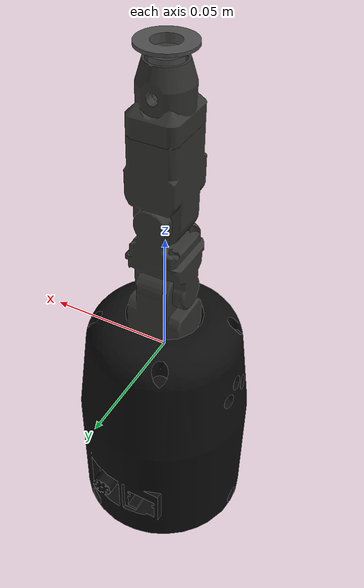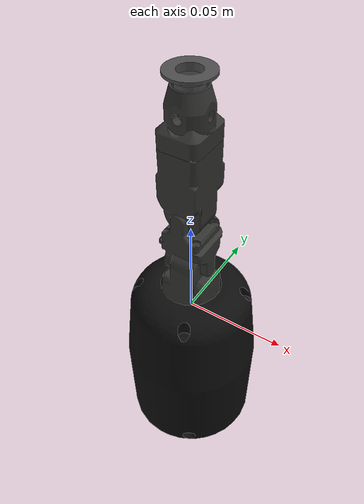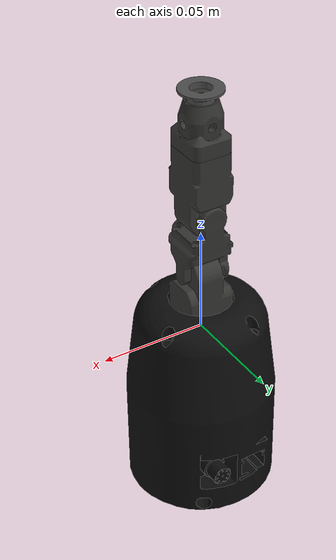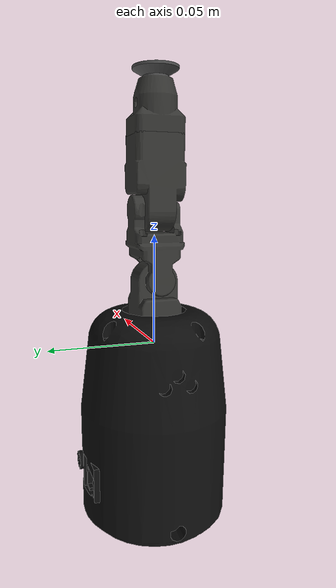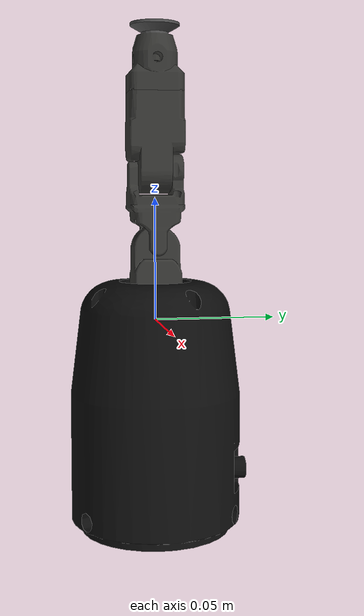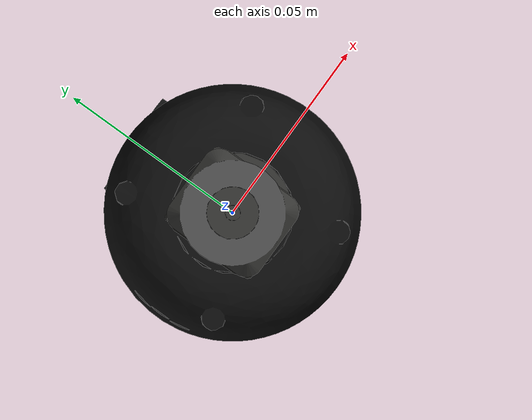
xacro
<?xml version="1.0"?>
<robot name="dg1f" xmlns:xacro="http://www.ros.org/wiki/xacro">

    <xacro:include filename="$(find dg1f_description)/urdf/dg1f.urdf" />

    <link name="base_link" />

    <joint name="base_joint" type="fixed">
        <parent link="base_link"/>
        <child link="l_base"/>
        <origin xyz="0 0 0" rpy="0 0 0"/>
    </joint>

    <ros2_control name="dg1f_mock" type="system">
        <hardware>
            <plugin>mock_components/GenericSystem</plugin>
            <param name="mock_sensor_commands">false</param>
            <param name="position_state_following_offset">0.0</param>
        </hardware>

        <joint name="j_1_1">
            <command_interface name="position" />
            <state_interface name="position"><param name="initial_value">0.0</param></state_interface>
            <state_interface name="velocity" />
        </joint>
        <joint name="j_1_2">
            <command_interface name="position" />
            <state_interface name="position"><param name="initial_value">0.0</param></state_interface>
            <state_interface name="velocity" />
        </joint>
        <joint name="j_1_3">
            <command_interface name="position" />
            <state_interface name="position"><param name="initial_value">0.0</param></state_interface>
            <state_interface name="velocity" />
        </joint>
    </ros2_control>
</robot>

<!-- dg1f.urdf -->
<robot name="dg1f">
  <!--links and joints-->
  <!--base-->
  <link name="l_base">
    <visual>
      <origin xyz="0 0 0" rpy="0 0 0" />
      <geometry>
        <mesh filename="package://dg1f_description/meshes/dg1f/visual/l_base.dae" />
      </geometry>
    </visual>
    <collision>
      <origin xyz="0 0 0" rpy="0 0 0" />
      <geometry>
        <mesh filename="package://dg1f_description/meshes/dg1f/collision/l_base.stl" />
      </geometry>
    </collision>
  </link>

  <!-- +++++++++++++++++++++++++++finger-1-->
  <link name="l_1_1">
    <visual>
      <origin xyz="0 0 0" rpy="0 0 0" />
      <geometry>
        <mesh filename="package://dg1f_description/meshes/dg1f/visual/l_1.dae" />
      </geometry>
    </visual>
    <collision>
      <origin xyz="0 0 0" rpy="0 0 0" />
      <geometry>
        <mesh filename="package://dg1f_description/meshes/dg1f/collision/l_1.stl" />
      </geometry>
    </collision>
  </link>
  <!--joint outer-->
  <joint name="j_1_1" type="revolute">
    <origin xyz="0 0 0" rpy="0.0 0.0 0.0" />
    <parent link="l_base" />
    <child link="l_1_1" />
    <axis xyz="0 0 1" />
    <limit lower="-3.141593" upper="3.141593" effort="7.644" velocity="3.141592653589793" />
  </joint>

  <link name="l_1_2">
    <visual>
      <origin xyz="0 0 0" rpy="0 0 0" />
      <geometry>
        <mesh filename="package://dg1f_description/meshes/dg1f/visual/l_2.dae" />
      </geometry>
    </visual>
    <collision>
      <origin xyz="0 0 0" rpy="0 0 0" />
      <geometry>
        <mesh filename="package://dg1f_description/meshes/dg1f/collision/l_2.stl" />
      </geometry>
    </collision>
  </link>
  <!--joint inner-->
  <joint name="j_1_2" type="revolute">
    <origin xyz="0 0 0.030317" rpy="0.0 0.0 0.0" />
    <parent link="l_1_1" />
    <child link="l_1_2" />
    <axis xyz="1 0 0" />
    <limit lower="-1.5708" upper="1.5708" effort="7.644" velocity="3.141592653589793" />
  </joint>

  <link name="l_1_3">
    <visual>
      <origin xyz="0 0 0" rpy="0 0 0" />
      <geometry>
        <mesh filename="package://dg1f_description/meshes/dg1f/visual/l_3.dae" />
      </geometry>
    </visual>
    <collision>
      <origin xyz="0 0 0" rpy="0 0 0" />
      <geometry>
        <mesh filename="package://dg1f_description/meshes/dg1f/collision/l_3.stl" />
      </geometry>
    </collision>
  </link>
  <!--joint 1-->
  <joint name="j_1_3" type="revolute">
    <origin xyz="0 0 0.031" rpy="0.0 0.0 0.0" />
    <parent link="l_1_2" />
    <child link="l_1_3" />
    <axis xyz="0 1 0" />
    <limit lower="-1.5708" upper="1.5708" effort="7.644" velocity="3.141592653589793" />
  </joint>

  <link name="l_1_4">
    <visual>
      <origin xyz="0 0 0" rpy="0 0 0" />
      <geometry>
        <mesh filename="package://dg1f_description/meshes/dg1f/visual/l_tip.dae" />
      </geometry>
    </visual>
    <collision>
      <origin xyz="0 0 0" rpy="0 0 0" />
      <geometry>
        <mesh filename="package://dg1f_description/meshes/dg1f/collision/l_tip.stl" />
      </geometry>
    </collision>
  </link>
  <!--joint 2-->
  <joint name="j_1_4" type="fixed">
    <origin xyz="0 0 0.03129" rpy="0.0 0.0 0.0" />
    <parent link="l_1_3" />
    <child link="l_1_4" />
    <axis xyz="0 0 1" />
  </joint>
</robot>
